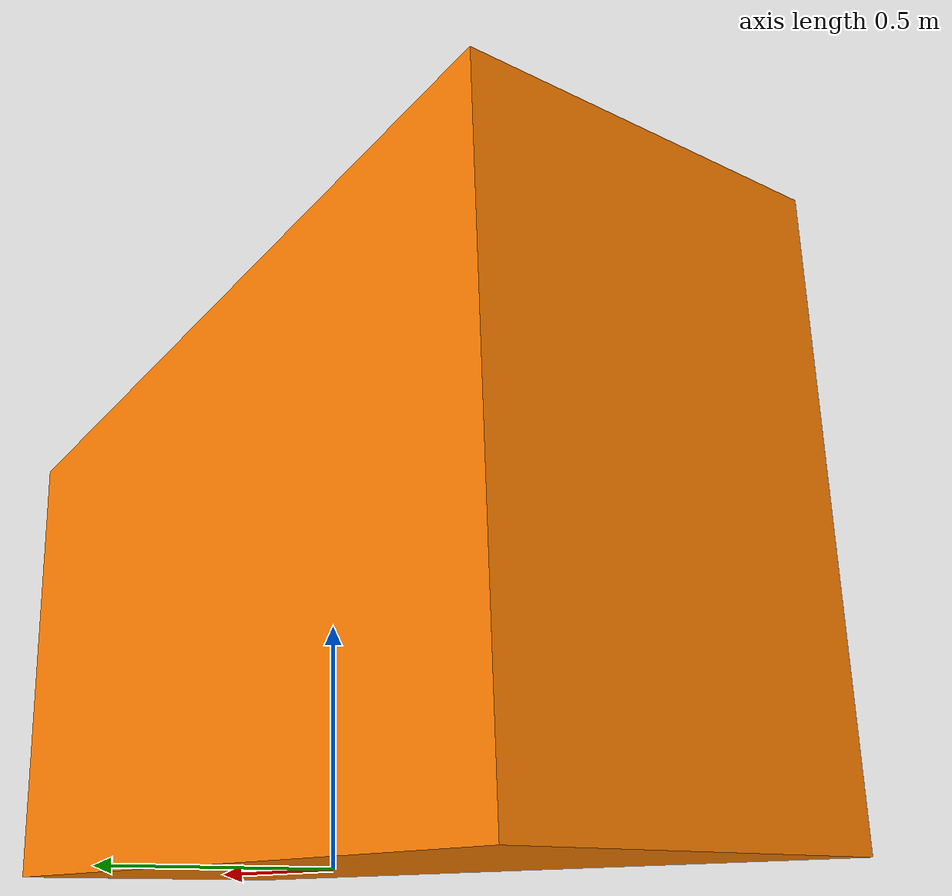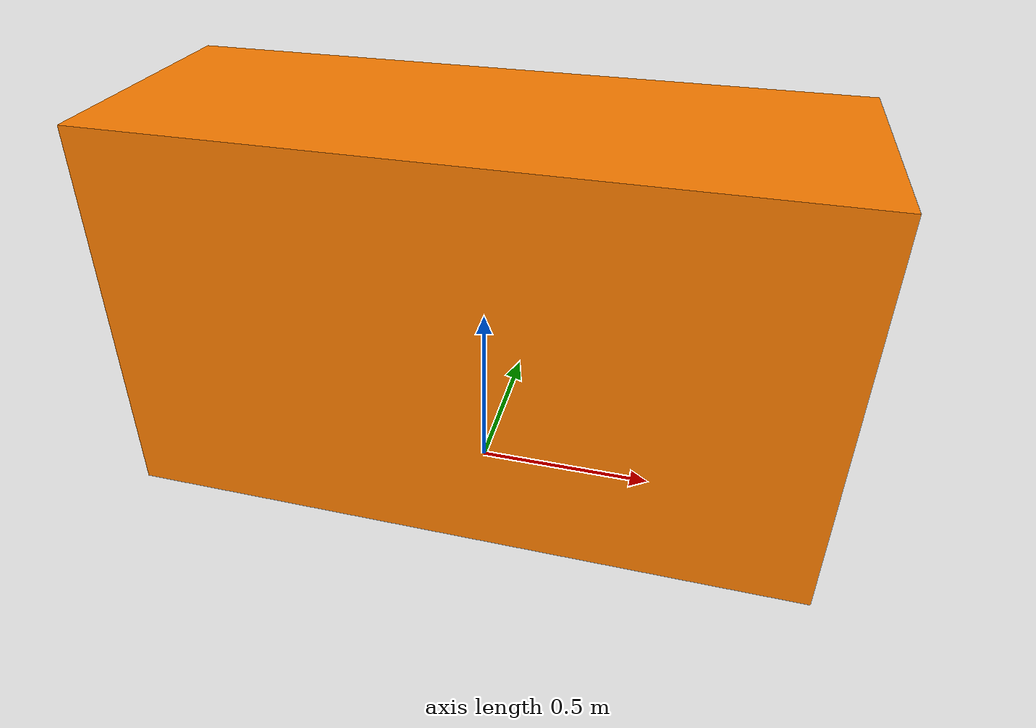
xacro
<!-- 电动自行车 -->
<robot xmlns:xacro="http://www.ros.org/wiki/xacro" name="obs_ebike">
    <!-- 颜色 -->
    <material name="orange">
        <color rgba="1.0 0.5 0.0 0.9"/>
    </material>

    <!-- 根坐标 -->
    <link name="map"/>

    <!-- 障碍电动自行车生成函数, 参数: id号, 长宽高-->
    <xacro:macro name="create_obs_ebike" params="id ebike_length ebike_width ebike_height color">
        <!-- 底盘在map的投影点 -->
        <link name="base_footprint_ebike${id}"/>

        <!-- 底盘 -->
        <link name="base_link_ebike${id}">
            <visual>
                <geometry>
                    <box size="${ebike_length} ${ebike_width} ${ebike_height}"/>
                </geometry>
                <material name="${color}"/>
            </visual>
        </link>

        <!-- 投影点关联到地图 -->
        <joint name="footprint_ebike${id}_to_map" type="fixed">
            <parent link="map"/>
            <child link="base_footprint_ebike${id}"/>
        </joint>

        <!-- 底盘关联到投影点 -->
        <joint name="base_ebike${id}_to_footprint${id}" type="fixed">
            <parent link="base_footprint_ebike${id}"/>
            <child link="base_link_ebike${id}"/>
            <origin xyz="0.0 0.0 ${ebike_height / 2.0}"/>
        </joint>
    </xacro:macro>

    <!-- 调用函数 -->
    <xacro:create_obs_ebike id="1" ebike_length="1.9" ebike_width="0.7" ebike_height="1.1" color="orange"/>
    <xacro:create_obs_ebike id="2" ebike_length="1.9" ebike_width="0.7" ebike_height="1.1" color="orange"/>
</robot>
